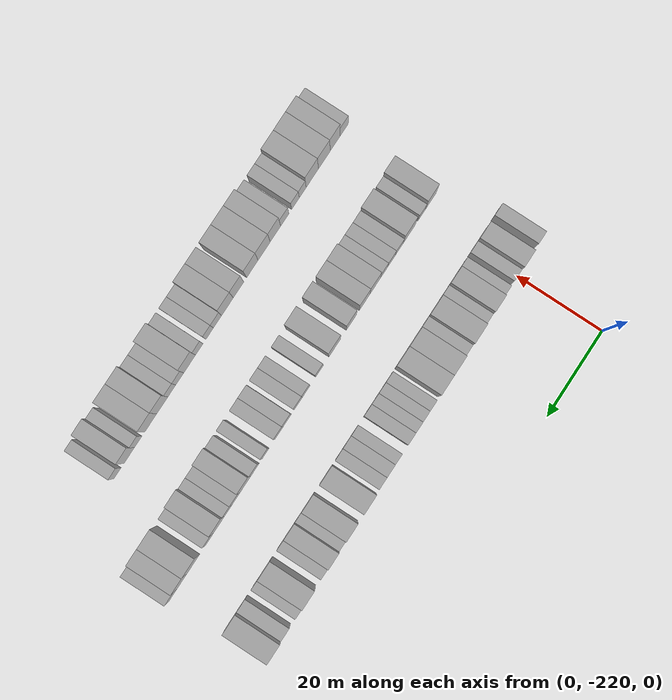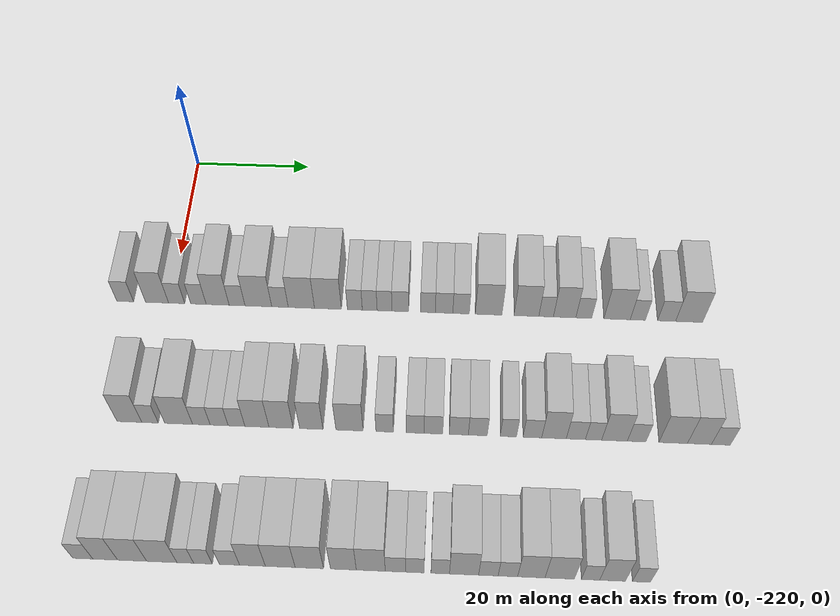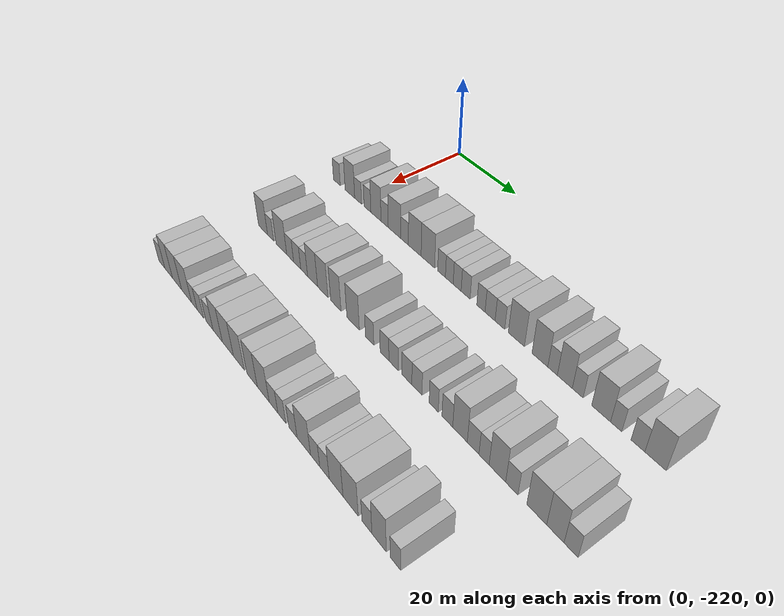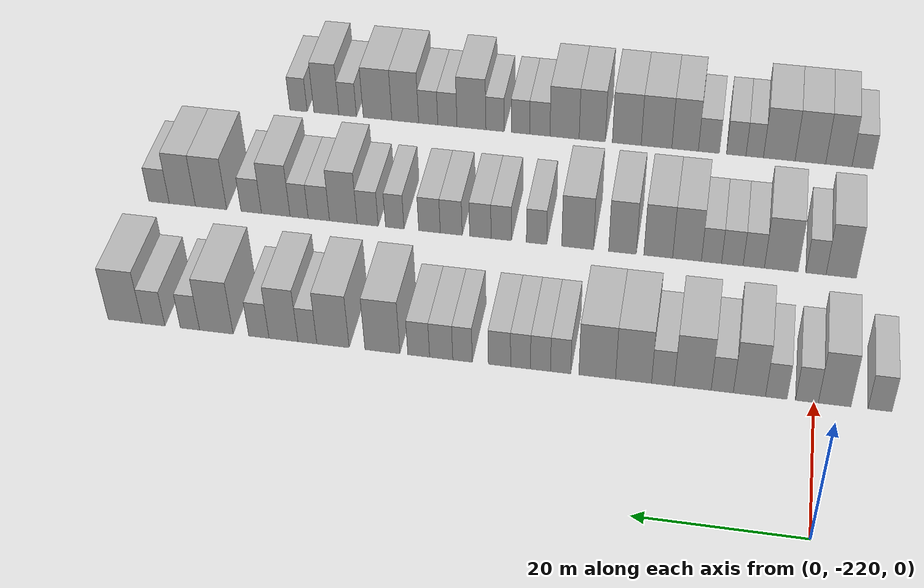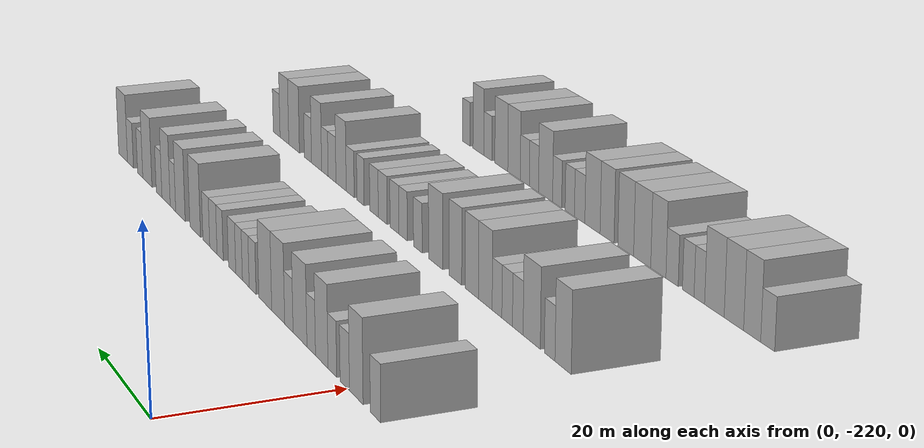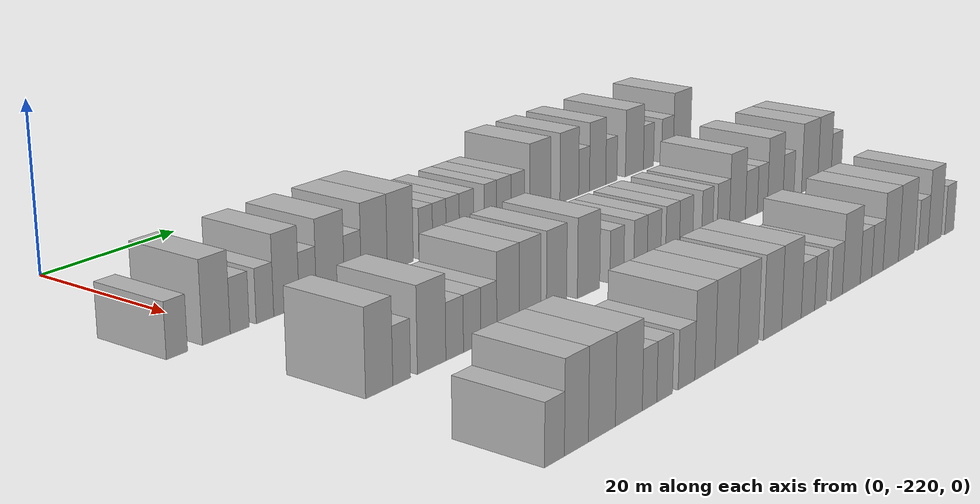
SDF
<sdf version="1.6">
 <world name="default">
  <model name="building_39">
   <static>1</static>
   <pose>25.0000 -227.7709 0 0.000000 0.000000 0.000000</pose>
   <link name="link">
    <pose>0 0 3.00 0 0 0</pose>
    <collision name="collision"><geometry><box><size>10.0000 2.8256 6.0000</size></box></geometry></collision>
    <visual name="visual">
     <cast_shadows>0</cast_shadows>
     <geometry><box><size>10.0000 2.8256 6.0000</size></box></geometry>
     <material>
      <script>
       <uri>model://HANNAS_wall/materials/scripts</uri>
       <uri>model://HANNAS_wall/materials/textures</uri>
       <name>vrc/HANNAS_wall</name>
      </script>
     </material>
    </visual>
   </link>
  </model>
  <model name="building_40">
   <static>1</static>
   <pose>25.0000 -222.4260 0 0.000000 0.000000 0.000000</pose>
   <link name="link">
    <pose>0 0 4.50 0 0 0</pose>
    <collision name="collision"><geometry><box><size>10.0000 3.8643 9.0000</size></box></geometry></collision>
    <visual name="visual">
     <cast_shadows>0</cast_shadows>
     <geometry><box><size>10.0000 3.8643 9.0000</size></box></geometry>
     <material>
      <script>
       <uri>model://HANNAS_wall/materials/scripts</uri>
       <uri>model://HANNAS_wall/materials/textures</uri>
       <name>vrc/HANNAS_wall</name>
      </script>
     </material>
    </visual>
   </link>
  </model>
  <model name="building_41">
   <static>1</static>
   <pose>25.0000 -219.1392 0 0.000000 0.000000 0.000000</pose>
   <link name="link">
    <pose>0 0 3.00 0 0 0</pose>
    <collision name="collision"><geometry><box><size>10.0000 2.7093 6.0000</size></box></geometry></collision>
    <visual name="visual">
     <cast_shadows>0</cast_shadows>
     <geometry><box><size>10.0000 2.7093 6.0000</size></box></geometry>
     <material>
      <script>
       <uri>model://HANNAS_wall/materials/scripts</uri>
       <uri>model://HANNAS_wall/materials/textures</uri>
       <name>vrc/HANNAS_wall</name>
      </script>
     </material>
    </visual>
   </link>
  </model>
  <model name="building_42">
   <static>1</static>
   <pose>25.0000 -215.4907 0 0.000000 0.000000 0.000000</pose>
   <link name="link">
    <pose>0 0 3.00 0 0 0</pose>
    <collision name="collision"><geometry><box><size>10.0000 2.5876 6.0000</size></box></geometry></collision>
    <visual name="visual">
     <cast_shadows>0</cast_shadows>
     <geometry><box><size>10.0000 2.5876 6.0000</size></box></geometry>
     <material>
      <script>
       <uri>model://HANNAS_wall/materials/scripts</uri>
       <uri>model://HANNAS_wall/materials/textures</uri>
       <name>vrc/HANNAS_wall</name>
      </script>
     </material>
    </visual>
   </link>
  </model>
  <model name="building_43">
   <static>1</static>
   <pose>25.0000 -212.2782 0 0.000000 0.000000 0.000000</pose>
   <link name="link">
    <pose>0 0 4.50 0 0 0</pose>
    <collision name="collision"><geometry><box><size>10.0000 3.8374 9.0000</size></box></geometry></collision>
    <visual name="visual">
     <cast_shadows>0</cast_shadows>
     <geometry><box><size>10.0000 3.8374 9.0000</size></box></geometry>
     <material>
      <script>
       <uri>model://HANNAS_wall/materials/scripts</uri>
       <uri>model://HANNAS_wall/materials/textures</uri>
       <name>vrc/HANNAS_wall</name>
      </script>
     </material>
    </visual>
   </link>
  </model>
  <model name="building_44">
   <static>1</static>
   <pose>25.0000 -209.0269 0 0.000000 0.000000 0.000000</pose>
   <link name="link">
    <pose>0 0 3.00 0 0 0</pose>
    <collision name="collision"><geometry><box><size>10.0000 2.6652 6.0000</size></box></geometry></collision>
    <visual name="visual">
     <cast_shadows>0</cast_shadows>
     <geometry><box><size>10.0000 2.6652 6.0000</size></box></geometry>
     <material>
      <script>
       <uri>model://HANNAS_wall/materials/scripts</uri>
       <uri>model://HANNAS_wall/materials/textures</uri>
       <name>vrc/HANNAS_wall</name>
      </script>
     </material>
    </visual>
   </link>
  </model>
  <model name="building_45">
   <static>1</static>
   <pose>25.0000 -205.4694 0 0.000000 0.000000 0.000000</pose>
   <link name="link">
    <pose>0 0 4.50 0 0 0</pose>
    <collision name="collision"><geometry><box><size>10.0000 4.4498 9.0000</size></box></geometry></collision>
    <visual name="visual">
     <cast_shadows>0</cast_shadows>
     <geometry><box><size>10.0000 4.4498 9.0000</size></box></geometry>
     <material>
      <script>
       <uri>model://HANNAS_wall/materials/scripts</uri>
       <uri>model://HANNAS_wall/materials/textures</uri>
       <name>vrc/HANNAS_wall</name>
      </script>
     </material>
    </visual>
   </link>
  </model>
  <model name="building_46">
   <static>1</static>
   <pose>25.0000 -201.8686 0 0.000000 0.000000 0.000000</pose>
   <link name="link">
    <pose>0 0 3.00 0 0 0</pose>
    <collision name="collision"><geometry><box><size>10.0000 2.7518 6.0000</size></box></geometry></collision>
    <visual name="visual">
     <cast_shadows>0</cast_shadows>
     <geometry><box><size>10.0000 2.7518 6.0000</size></box></geometry>
     <material>
      <script>
       <uri>model://HANNAS_wall/materials/scripts</uri>
       <uri>model://HANNAS_wall/materials/textures</uri>
       <name>vrc/HANNAS_wall</name>
      </script>
     </material>
    </visual>
   </link>
  </model>
  <model name="building_47">
   <static>1</static>
   <pose>25.0000 -198.3049 0 0.000000 0.000000 0.000000</pose>
   <link name="link">
    <pose>0 0 4.50 0 0 0</pose>
    <collision name="collision"><geometry><box><size>10.0000 4.3757 9.0000</size></box></geometry></collision>
    <visual name="visual">
     <cast_shadows>0</cast_shadows>
     <geometry><box><size>10.0000 4.3757 9.0000</size></box></geometry>
     <material>
      <script>
       <uri>model://HANNAS_wall/materials/scripts</uri>
       <uri>model://HANNAS_wall/materials/textures</uri>
       <name>vrc/HANNAS_wall</name>
      </script>
     </material>
    </visual>
   </link>
  </model>
  <model name="building_48">
   <static>1</static>
   <pose>25.0000 -193.8759 0 0.000000 0.000000 0.000000</pose>
   <link name="link">
    <pose>0 0 4.50 0 0 0</pose>
    <collision name="collision"><geometry><box><size>10.0000 4.4822 9.0000</size></box></geometry></collision>
    <visual name="visual">
     <cast_shadows>0</cast_shadows>
     <geometry><box><size>10.0000 4.4822 9.0000</size></box></geometry>
     <material>
      <script>
       <uri>model://HANNAS_wall/materials/scripts</uri>
       <uri>model://HANNAS_wall/materials/textures</uri>
       <name>vrc/HANNAS_wall</name>
      </script>
     </material>
    </visual>
   </link>
  </model>
  <model name="building_49">
   <static>1</static>
   <pose>25.0000 -189.3952 0 0.000000 0.000000 0.000000</pose>
   <link name="link">
    <pose>0 0 3.00 0 0 0</pose>
    <collision name="collision"><geometry><box><size>10.0000 2.4792 6.0000</size></box></geometry></collision>
    <visual name="visual">
     <cast_shadows>0</cast_shadows>
     <geometry><box><size>10.0000 2.4792 6.0000</size></box></geometry>
     <material>
      <script>
       <uri>model://HANNAS_wall/materials/scripts</uri>
       <uri>model://HANNAS_wall/materials/textures</uri>
       <name>vrc/HANNAS_wall</name>
      </script>
     </material>
    </visual>
   </link>
  </model>
  <model name="building_50">
   <static>1</static>
   <pose>25.0000 -186.9247 0 0.000000 0.000000 0.000000</pose>
   <link name="link">
    <pose>0 0 3.00 0 0 0</pose>
    <collision name="collision"><geometry><box><size>10.0000 2.4616 6.0000</size></box></geometry></collision>
    <visual name="visual">
     <cast_shadows>0</cast_shadows>
     <geometry><box><size>10.0000 2.4616 6.0000</size></box></geometry>
     <material>
      <script>
       <uri>model://HANNAS_wall/materials/scripts</uri>
       <uri>model://HANNAS_wall/materials/textures</uri>
       <name>vrc/HANNAS_wall</name>
      </script>
     </material>
    </visual>
   </link>
  </model>
  <model name="building_51">
   <static>1</static>
   <pose>25.0000 -184.4605 0 0.000000 0.000000 0.000000</pose>
   <link name="link">
    <pose>0 0 3.00 0 0 0</pose>
    <collision name="collision"><geometry><box><size>10.0000 2.4669 6.0000</size></box></geometry></collision>
    <visual name="visual">
     <cast_shadows>0</cast_shadows>
     <geometry><box><size>10.0000 2.4669 6.0000</size></box></geometry>
     <material>
      <script>
       <uri>model://HANNAS_wall/materials/scripts</uri>
       <uri>model://HANNAS_wall/materials/textures</uri>
       <name>vrc/HANNAS_wall</name>
      </script>
     </material>
    </visual>
   </link>
  </model>
  <model name="building_52">
   <static>1</static>
   <pose>25.0000 -181.8542 0 0.000000 0.000000 0.000000</pose>
   <link name="link">
    <pose>0 0 3.00 0 0 0</pose>
    <collision name="collision"><geometry><box><size>10.0000 2.7457 6.0000</size></box></geometry></collision>
    <visual name="visual">
     <cast_shadows>0</cast_shadows>
     <geometry><box><size>10.0000 2.7457 6.0000</size></box></geometry>
     <material>
      <script>
       <uri>model://HANNAS_wall/materials/scripts</uri>
       <uri>model://HANNAS_wall/materials/textures</uri>
       <name>vrc/HANNAS_wall</name>
      </script>
     </material>
    </visual>
   </link>
  </model>
  <model name="building_53">
   <static>1</static>
   <pose>25.0000 -177.2679 0 0.000000 0.000000 0.000000</pose>
   <link name="link">
    <pose>0 0 3.00 0 0 0</pose>
    <collision name="collision"><geometry><box><size>10.0000 2.4268 6.0000</size></box></geometry></collision>
    <visual name="visual">
     <cast_shadows>0</cast_shadows>
     <geometry><box><size>10.0000 2.4268 6.0000</size></box></geometry>
     <material>
      <script>
       <uri>model://HANNAS_wall/materials/scripts</uri>
       <uri>model://HANNAS_wall/materials/textures</uri>
       <name>vrc/HANNAS_wall</name>
      </script>
     </material>
    </visual>
   </link>
  </model>
  <model name="building_54">
   <static>1</static>
   <pose>25.0000 -174.6032 0 0.000000 0.000000 0.000000</pose>
   <link name="link">
    <pose>0 0 3.00 0 0 0</pose>
    <collision name="collision"><geometry><box><size>10.0000 2.9027 6.0000</size></box></geometry></collision>
    <visual name="visual">
     <cast_shadows>0</cast_shadows>
     <geometry><box><size>10.0000 2.9027 6.0000</size></box></geometry>
     <material>
      <script>
       <uri>model://HANNAS_wall/materials/scripts</uri>
       <uri>model://HANNAS_wall/materials/textures</uri>
       <name>vrc/HANNAS_wall</name>
      </script>
     </material>
    </visual>
   </link>
  </model>
  <model name="building_55">
   <static>1</static>
   <pose>25.0000 -171.7885 0 0.000000 0.000000 0.000000</pose>
   <link name="link">
    <pose>0 0 3.00 0 0 0</pose>
    <collision name="collision"><geometry><box><size>10.0000 2.7267 6.0000</size></box></geometry></collision>
    <visual name="visual">
     <cast_shadows>0</cast_shadows>
     <geometry><box><size>10.0000 2.7267 6.0000</size></box></geometry>
     <material>
      <script>
       <uri>model://HANNAS_wall/materials/scripts</uri>
       <uri>model://HANNAS_wall/materials/textures</uri>
       <name>vrc/HANNAS_wall</name>
      </script>
     </material>
    </visual>
   </link>
  </model>
  <model name="building_56">
   <static>1</static>
   <pose>25.0000 -167.2256 0 0.000000 0.000000 0.000000</pose>
   <link name="link">
    <pose>0 0 4.50 0 0 0</pose>
    <collision name="collision"><geometry><box><size>10.0000 4.3991 9.0000</size></box></geometry></collision>
    <visual name="visual">
     <cast_shadows>0</cast_shadows>
     <geometry><box><size>10.0000 4.3991 9.0000</size></box></geometry>
     <material>
      <script>
       <uri>model://HANNAS_wall/materials/scripts</uri>
       <uri>model://HANNAS_wall/materials/textures</uri>
       <name>vrc/HANNAS_wall</name>
      </script>
     </material>
    </visual>
   </link>
  </model>
  <model name="building_57">
   <static>1</static>
   <pose>25.0000 -160.9756 0 0.000000 0.000000 0.000000</pose>
   <link name="link">
    <pose>0 0 4.50 0 0 0</pose>
    <collision name="collision"><geometry><box><size>10.0000 4.1008 9.0000</size></box></geometry></collision>
    <visual name="visual">
     <cast_shadows>0</cast_shadows>
     <geometry><box><size>10.0000 4.1008 9.0000</size></box></geometry>
     <material>
      <script>
       <uri>model://HANNAS_wall/materials/scripts</uri>
       <uri>model://HANNAS_wall/materials/textures</uri>
       <name>vrc/HANNAS_wall</name>
      </script>
     </material>
    </visual>
   </link>
  </model>
  <model name="building_58">
   <static>1</static>
   <pose>25.0000 -157.7226 0 0.000000 0.000000 0.000000</pose>
   <link name="link">
    <pose>0 0 3.00 0 0 0</pose>
    <collision name="collision"><geometry><box><size>10.0000 2.4053 6.0000</size></box></geometry></collision>
    <visual name="visual">
     <cast_shadows>0</cast_shadows>
     <geometry><box><size>10.0000 2.4053 6.0000</size></box></geometry>
     <material>
      <script>
       <uri>model://HANNAS_wall/materials/scripts</uri>
       <uri>model://HANNAS_wall/materials/textures</uri>
       <name>vrc/HANNAS_wall</name>
      </script>
     </material>
    </visual>
   </link>
  </model>
  <model name="building_59">
   <static>1</static>
   <pose>25.0000 -154.6700 0 0.000000 0.000000 0.000000</pose>
   <link name="link">
    <pose>0 0 4.50 0 0 0</pose>
    <collision name="collision"><geometry><box><size>10.0000 3.6998 9.0000</size></box></geometry></collision>
    <visual name="visual">
     <cast_shadows>0</cast_shadows>
     <geometry><box><size>10.0000 3.6998 9.0000</size></box></geometry>
     <material>
      <script>
       <uri>model://HANNAS_wall/materials/scripts</uri>
       <uri>model://HANNAS_wall/materials/textures</uri>
       <name>vrc/HANNAS_wall</name>
      </script>
     </material>
    </visual>
   </link>
  </model>
  <model name="building_60">
   <static>1</static>
   <pose>25.0000 -151.5167 0 0.000000 0.000000 0.000000</pose>
   <link name="link">
    <pose>0 0 3.00 0 0 0</pose>
    <collision name="collision"><geometry><box><size>10.0000 2.6069 6.0000</size></box></geometry></collision>
    <visual name="visual">
     <cast_shadows>0</cast_shadows>
     <geometry><box><size>10.0000 2.6069 6.0000</size></box></geometry>
     <material>
      <script>
       <uri>model://HANNAS_wall/materials/scripts</uri>
       <uri>model://HANNAS_wall/materials/textures</uri>
       <name>vrc/HANNAS_wall</name>
      </script>
     </material>
    </visual>
   </link>
  </model>
  <model name="building_61">
   <static>1</static>
   <pose>25.0000 -146.0460 0 0.000000 0.000000 0.000000</pose>
   <link name="link">
    <pose>0 0 4.50 0 0 0</pose>
    <collision name="collision"><geometry><box><size>10.0000 4.3344 9.0000</size></box></geometry></collision>
    <visual name="visual">
     <cast_shadows>0</cast_shadows>
     <geometry><box><size>10.0000 4.3344 9.0000</size></box></geometry>
     <material>
      <script>
       <uri>model://HANNAS_wall/materials/scripts</uri>
       <uri>model://HANNAS_wall/materials/textures</uri>
       <name>vrc/HANNAS_wall</name>
      </script>
     </material>
    </visual>
   </link>
  </model>
  <model name="building_62">
   <static>1</static>
   <pose>25.0000 -142.6316 0 0.000000 0.000000 0.000000</pose>
   <link name="link">
    <pose>0 0 3.00 0 0 0</pose>
    <collision name="collision"><geometry><box><size>10.0000 2.4945 6.0000</size></box></geometry></collision>
    <visual name="visual">
     <cast_shadows>0</cast_shadows>
     <geometry><box><size>10.0000 2.4945 6.0000</size></box></geometry>
     <material>
      <script>
       <uri>model://HANNAS_wall/materials/scripts</uri>
       <uri>model://HANNAS_wall/materials/textures</uri>
       <name>vrc/HANNAS_wall</name>
      </script>
     </material>
    </visual>
   </link>
  </model>
  <model name="building_63">
   <static>1</static>
   <pose>25.0000 -137.9077 0 0.000000 0.000000 0.000000</pose>
   <link name="link">
    <pose>0 0 3.00 0 0 0</pose>
    <collision name="collision"><geometry><box><size>10.0000 2.9533 6.0000</size></box></geometry></collision>
    <visual name="visual">
     <cast_shadows>0</cast_shadows>
     <geometry><box><size>10.0000 2.9533 6.0000</size></box></geometry>
     <material>
      <script>
       <uri>model://HANNAS_wall/materials/scripts</uri>
       <uri>model://HANNAS_wall/materials/textures</uri>
       <name>vrc/HANNAS_wall</name>
      </script>
     </material>
    </visual>
   </link>
  </model>
  <model name="building_64">
   <static>1</static>
   <pose>25.0000 -134.2101 0 0.000000 0.000000 0.000000</pose>
   <link name="link">
    <pose>0 0 4.50 0 0 0</pose>
    <collision name="collision"><geometry><box><size>10.0000 4.4419 9.0000</size></box></geometry></collision>
    <visual name="visual">
     <cast_shadows>0</cast_shadows>
     <geometry><box><size>10.0000 4.4419 9.0000</size></box></geometry>
     <material>
      <script>
       <uri>model://HANNAS_wall/materials/scripts</uri>
       <uri>model://HANNAS_wall/materials/textures</uri>
       <name>vrc/HANNAS_wall</name>
      </script>
     </material>
    </visual>
   </link>
  </model>
  <model name="building_226">
   <static>1</static>
   <pose>47.0000 -222.9949 0 0.000000 0.000000 0.000000</pose>
   <link name="link">
    <pose>0 0 4.50 0 0 0</pose>
    <collision name="collision"><geometry><box><size>10.0000 3.8759 9.0000</size></box></geometry></collision>
    <visual name="visual">
     <cast_shadows>0</cast_shadows>
     <geometry><box><size>10.0000 3.8759 9.0000</size></box></geometry>
     <material>
      <script>
       <uri>model://HANNAS_wall/materials/scripts</uri>
       <uri>model://HANNAS_wall/materials/textures</uri>
       <name>vrc/HANNAS_wall</name>
      </script>
     </material>
    </visual>
   </link>
  </model>
  <model name="building_227">
   <static>1</static>
   <pose>47.0000 -219.7578 0 0.000000 0.000000 0.000000</pose>
   <link name="link">
    <pose>0 0 3.00 0 0 0</pose>
    <collision name="collision"><geometry><box><size>10.0000 2.5982 6.0000</size></box></geometry></collision>
    <visual name="visual">
     <cast_shadows>0</cast_shadows>
     <geometry><box><size>10.0000 2.5982 6.0000</size></box></geometry>
     <material>
      <script>
       <uri>model://HANNAS_wall/materials/scripts</uri>
       <uri>model://HANNAS_wall/materials/textures</uri>
       <name>vrc/HANNAS_wall</name>
      </script>
     </material>
    </visual>
   </link>
  </model>
  <model name="building_228">
   <static>1</static>
   <pose>47.0000 -215.2842 0 0.000000 0.000000 0.000000</pose>
   <link name="link">
    <pose>0 0 4.50 0 0 0</pose>
    <collision name="collision"><geometry><box><size>10.0000 4.3491 9.0000</size></box></geometry></collision>
    <visual name="visual">
     <cast_shadows>0</cast_shadows>
     <geometry><box><size>10.0000 4.3491 9.0000</size></box></geometry>
     <material>
      <script>
       <uri>model://HANNAS_wall/materials/scripts</uri>
       <uri>model://HANNAS_wall/materials/textures</uri>
       <name>vrc/HANNAS_wall</name>
      </script>
     </material>
    </visual>
   </link>
  </model>
  <model name="building_229">
   <static>1</static>
   <pose>47.0000 -211.7308 0 0.000000 0.000000 0.000000</pose>
   <link name="link">
    <pose>0 0 3.00 0 0 0</pose>
    <collision name="collision"><geometry><box><size>10.0000 2.7577 6.0000</size></box></geometry></collision>
    <visual name="visual">
     <cast_shadows>0</cast_shadows>
     <geometry><box><size>10.0000 2.7577 6.0000</size></box></geometry>
     <material>
      <script>
       <uri>model://HANNAS_wall/materials/scripts</uri>
       <uri>model://HANNAS_wall/materials/textures</uri>
       <name>vrc/HANNAS_wall</name>
      </script>
     </material>
    </visual>
   </link>
  </model>
  <model name="building_230">
   <static>1</static>
   <pose>47.0000 -208.9509 0 0.000000 0.000000 0.000000</pose>
   <link name="link">
    <pose>0 0 3.00 0 0 0</pose>
    <collision name="collision"><geometry><box><size>10.0000 2.8020 6.0000</size></box></geometry></collision>
    <visual name="visual">
     <cast_shadows>0</cast_shadows>
     <geometry><box><size>10.0000 2.8020 6.0000</size></box></geometry>
     <material>
      <script>
       <uri>model://HANNAS_wall/materials/scripts</uri>
       <uri>model://HANNAS_wall/materials/textures</uri>
       <name>vrc/HANNAS_wall</name>
      </script>
     </material>
    </visual>
   </link>
  </model>
  <model name="building_231">
   <static>1</static>
   <pose>47.0000 -206.2423 0 0.000000 0.000000 0.000000</pose>
   <link name="link">
    <pose>0 0 3.00 0 0 0</pose>
    <collision name="collision"><geometry><box><size>10.0000 2.6152 6.0000</size></box></geometry></collision>
    <visual name="visual">
     <cast_shadows>0</cast_shadows>
     <geometry><box><size>10.0000 2.6152 6.0000</size></box></geometry>
     <material>
      <script>
       <uri>model://HANNAS_wall/materials/scripts</uri>
       <uri>model://HANNAS_wall/materials/textures</uri>
       <name>vrc/HANNAS_wall</name>
      </script>
     </material>
    </visual>
   </link>
  </model>
  <model name="building_232">
   <static>1</static>
   <pose>47.0000 -203.0564 0 0.000000 0.000000 0.000000</pose>
   <link name="link">
    <pose>0 0 4.50 0 0 0</pose>
    <collision name="collision"><geometry><box><size>10.0000 3.7567 9.0000</size></box></geometry></collision>
    <visual name="visual">
     <cast_shadows>0</cast_shadows>
     <geometry><box><size>10.0000 3.7567 9.0000</size></box></geometry>
     <material>
      <script>
       <uri>model://HANNAS_wall/materials/scripts</uri>
       <uri>model://HANNAS_wall/materials/textures</uri>
       <name>vrc/HANNAS_wall</name>
      </script>
     </material>
    </visual>
   </link>
  </model>
  <model name="building_233">
   <static>1</static>
   <pose>47.0000 -199.2914 0 0.000000 0.000000 0.000000</pose>
   <link name="link">
    <pose>0 0 4.50 0 0 0</pose>
    <collision name="collision"><geometry><box><size>10.0000 3.7733 9.0000</size></box></geometry></collision>
    <visual name="visual">
     <cast_shadows>0</cast_shadows>
     <geometry><box><size>10.0000 3.7733 9.0000</size></box></geometry>
     <material>
      <script>
       <uri>model://HANNAS_wall/materials/scripts</uri>
       <uri>model://HANNAS_wall/materials/textures</uri>
       <name>vrc/HANNAS_wall</name>
      </script>
     </material>
    </visual>
   </link>
  </model>
  <model name="building_234">
   <static>1</static>
   <pose>47.0000 -194.5879 0 0.000000 0.000000 0.000000</pose>
   <link name="link">
    <pose>0 0 4.50 0 0 0</pose>
    <collision name="collision"><geometry><box><size>10.0000 3.6338 9.0000</size></box></geometry></collision>
    <visual name="visual">
     <cast_shadows>0</cast_shadows>
     <geometry><box><size>10.0000 3.6338 9.0000</size></box></geometry>
     <material>
      <script>
       <uri>model://HANNAS_wall/materials/scripts</uri>
       <uri>model://HANNAS_wall/materials/textures</uri>
       <name>vrc/HANNAS_wall</name>
      </script>
     </material>
    </visual>
   </link>
  </model>
  <model name="building_235">
   <static>1</static>
   <pose>47.0000 -188.6624 0 0.000000 0.000000 0.000000</pose>
   <link name="link">
    <pose>0 0 4.50 0 0 0</pose>
    <collision name="collision"><geometry><box><size>10.0000 4.2171 9.0000</size></box></geometry></collision>
    <visual name="visual">
     <cast_shadows>0</cast_shadows>
     <geometry><box><size>10.0000 4.2171 9.0000</size></box></geometry>
     <material>
      <script>
       <uri>model://HANNAS_wall/materials/scripts</uri>
       <uri>model://HANNAS_wall/materials/textures</uri>
       <name>vrc/HANNAS_wall</name>
      </script>
     </material>
    </visual>
   </link>
  </model>
  <model name="building_236">
   <static>1</static>
   <pose>47.0000 -183.1986 0 0.000000 0.000000 0.000000</pose>
   <link name="link">
    <pose>0 0 3.00 0 0 0</pose>
    <collision name="collision"><geometry><box><size>10.0000 2.7106 6.0000</size></box></geometry></collision>
    <visual name="visual">
     <cast_shadows>0</cast_shadows>
     <geometry><box><size>10.0000 2.7106 6.0000</size></box></geometry>
     <material>
      <script>
       <uri>model://HANNAS_wall/materials/scripts</uri>
       <uri>model://HANNAS_wall/materials/textures</uri>
       <name>vrc/HANNAS_wall</name>
      </script>
     </material>
    </visual>
   </link>
  </model>
  <model name="building_237">
   <static>1</static>
   <pose>47.0000 -178.4781 0 0.000000 0.000000 0.000000</pose>
   <link name="link">
    <pose>0 0 3.00 0 0 0</pose>
    <collision name="collision"><geometry><box><size>10.0000 2.7304 6.0000</size></box></geometry></collision>
    <visual name="visual">
     <cast_shadows>0</cast_shadows>
     <geometry><box><size>10.0000 2.7304 6.0000</size></box></geometry>
     <material>
      <script>
       <uri>model://HANNAS_wall/materials/scripts</uri>
       <uri>model://HANNAS_wall/materials/textures</uri>
       <name>vrc/HANNAS_wall</name>
      </script>
     </material>
    </visual>
   </link>
  </model>
  <model name="building_238">
   <static>1</static>
   <pose>47.0000 -175.6693 0 0.000000 0.000000 0.000000</pose>
   <link name="link">
    <pose>0 0 3.00 0 0 0</pose>
    <collision name="collision"><geometry><box><size>10.0000 2.8872 6.0000</size></box></geometry></collision>
    <visual name="visual">
     <cast_shadows>0</cast_shadows>
     <geometry><box><size>10.0000 2.8872 6.0000</size></box></geometry>
     <material>
      <script>
       <uri>model://HANNAS_wall/materials/scripts</uri>
       <uri>model://HANNAS_wall/materials/textures</uri>
       <name>vrc/HANNAS_wall</name>
      </script>
     </material>
    </visual>
   </link>
  </model>
  <model name="building_239">
   <static>1</static>
   <pose>47.0000 -171.7450 0 0.000000 0.000000 0.000000</pose>
   <link name="link">
    <pose>0 0 3.00 0 0 0</pose>
    <collision name="collision"><geometry><box><size>10.0000 2.9614 6.0000</size></box></geometry></collision>
    <visual name="visual">
     <cast_shadows>0</cast_shadows>
     <geometry><box><size>10.0000 2.9614 6.0000</size></box></geometry>
     <material>
      <script>
       <uri>model://HANNAS_wall/materials/scripts</uri>
       <uri>model://HANNAS_wall/materials/textures</uri>
       <name>vrc/HANNAS_wall</name>
      </script>
     </material>
    </visual>
   </link>
  </model>
  <model name="building_240">
   <static>1</static>
   <pose>47.0000 -168.8043 0 0.000000 0.000000 0.000000</pose>
   <link name="link">
    <pose>0 0 3.00 0 0 0</pose>
    <collision name="collision"><geometry><box><size>10.0000 2.9201 6.0000</size></box></geometry></collision>
    <visual name="visual">
     <cast_shadows>0</cast_shadows>
     <geometry><box><size>10.0000 2.9201 6.0000</size></box></geometry>
     <material>
      <script>
       <uri>model://HANNAS_wall/materials/scripts</uri>
       <uri>model://HANNAS_wall/materials/textures</uri>
       <name>vrc/HANNAS_wall</name>
      </script>
     </material>
    </visual>
   </link>
  </model>
  <model name="building_241">
   <static>1</static>
   <pose>47.0000 -164.0851 0 0.000000 0.000000 0.000000</pose>
   <link name="link">
    <pose>0 0 3.00 0 0 0</pose>
    <collision name="collision"><geometry><box><size>10.0000 2.5182 6.0000</size></box></geometry></collision>
    <visual name="visual">
     <cast_shadows>0</cast_shadows>
     <geometry><box><size>10.0000 2.5182 6.0000</size></box></geometry>
     <material>
      <script>
       <uri>model://HANNAS_wall/materials/scripts</uri>
       <uri>model://HANNAS_wall/materials/textures</uri>
       <name>vrc/HANNAS_wall</name>
      </script>
     </material>
    </visual>
   </link>
  </model>
  <model name="building_242">
   <static>1</static>
   <pose>47.0000 -160.3855 0 0.000000 0.000000 0.000000</pose>
   <link name="link">
    <pose>0 0 3.00 0 0 0</pose>
    <collision name="collision"><geometry><box><size>10.0000 2.8812 6.0000</size></box></geometry></collision>
    <visual name="visual">
     <cast_shadows>0</cast_shadows>
     <geometry><box><size>10.0000 2.8812 6.0000</size></box></geometry>
     <material>
      <script>
       <uri>model://HANNAS_wall/materials/scripts</uri>
       <uri>model://HANNAS_wall/materials/textures</uri>
       <name>vrc/HANNAS_wall</name>
      </script>
     </material>
    </visual>
   </link>
  </model>
  <model name="building_243">
   <static>1</static>
   <pose>47.0000 -157.0518 0 0.000000 0.000000 0.000000</pose>
   <link name="link">
    <pose>0 0 4.50 0 0 0</pose>
    <collision name="collision"><geometry><box><size>10.0000 3.7862 9.0000</size></box></geometry></collision>
    <visual name="visual">
     <cast_shadows>0</cast_shadows>
     <geometry><box><size>10.0000 3.7862 9.0000</size></box></geometry>
     <material>
      <script>
       <uri>model://HANNAS_wall/materials/scripts</uri>
       <uri>model://HANNAS_wall/materials/textures</uri>
       <name>vrc/HANNAS_wall</name>
      </script>
     </material>
    </visual>
   </link>
  </model>
  <model name="building_244">
   <static>1</static>
   <pose>47.0000 -153.6882 0 0.000000 0.000000 0.000000</pose>
   <link name="link">
    <pose>0 0 3.00 0 0 0</pose>
    <collision name="collision"><geometry><box><size>10.0000 2.9409 6.0000</size></box></geometry></collision>
    <visual name="visual">
     <cast_shadows>0</cast_shadows>
     <geometry><box><size>10.0000 2.9409 6.0000</size></box></geometry>
     <material>
      <script>
       <uri>model://HANNAS_wall/materials/scripts</uri>
       <uri>model://HANNAS_wall/materials/textures</uri>
       <name>vrc/HANNAS_wall</name>
      </script>
     </material>
    </visual>
   </link>
  </model>
  <model name="building_245">
   <static>1</static>
   <pose>47.0000 -150.9694 0 0.000000 0.000000 0.000000</pose>
   <link name="link">
    <pose>0 0 3.00 0 0 0</pose>
    <collision name="collision"><geometry><box><size>10.0000 2.4968 6.0000</size></box></geometry></collision>
    <visual name="visual">
     <cast_shadows>0</cast_shadows>
     <geometry><box><size>10.0000 2.4968 6.0000</size></box></geometry>
     <material>
      <script>
       <uri>model://HANNAS_wall/materials/scripts</uri>
       <uri>model://HANNAS_wall/materials/textures</uri>
       <name>vrc/HANNAS_wall</name>
      </script>
     </material>
    </visual>
   </link>
  </model>
  <model name="building_246">
   <static>1</static>
   <pose>47.0000 -147.7438 0 0.000000 0.000000 0.000000</pose>
   <link name="link">
    <pose>0 0 4.50 0 0 0</pose>
    <collision name="collision"><geometry><box><size>10.0000 3.9543 9.0000</size></box></geometry></collision>
    <visual name="visual">
     <cast_shadows>0</cast_shadows>
     <geometry><box><size>10.0000 3.9543 9.0000</size></box></geometry>
     <material>
      <script>
       <uri>model://HANNAS_wall/materials/scripts</uri>
       <uri>model://HANNAS_wall/materials/textures</uri>
       <name>vrc/HANNAS_wall</name>
      </script>
     </material>
    </visual>
   </link>
  </model>
  <model name="building_247">
   <static>1</static>
   <pose>47.0000 -144.3407 0 0.000000 0.000000 0.000000</pose>
   <link name="link">
    <pose>0 0 3.00 0 0 0</pose>
    <collision name="collision"><geometry><box><size>10.0000 2.8518 6.0000</size></box></geometry></collision>
    <visual name="visual">
     <cast_shadows>0</cast_shadows>
     <geometry><box><size>10.0000 2.8518 6.0000</size></box></geometry>
     <material>
      <script>
       <uri>model://HANNAS_wall/materials/scripts</uri>
       <uri>model://HANNAS_wall/materials/textures</uri>
       <name>vrc/HANNAS_wall</name>
      </script>
     </material>
    </visual>
   </link>
  </model>
  <model name="building_248">
   <static>1</static>
   <pose>47.0000 -138.7306 0 0.000000 0.000000 0.000000</pose>
   <link name="link">
    <pose>0 0 4.50 0 0 0</pose>
    <collision name="collision"><geometry><box><size>10.0000 4.3685 9.0000</size></box></geometry></collision>
    <visual name="visual">
     <cast_shadows>0</cast_shadows>
     <geometry><box><size>10.0000 4.3685 9.0000</size></box></geometry>
     <material>
      <script>
       <uri>model://HANNAS_wall/materials/scripts</uri>
       <uri>model://HANNAS_wall/materials/textures</uri>
       <name>vrc/HANNAS_wall</name>
      </script>
     </material>
    </visual>
   </link>
  </model>
  <model name="building_249">
   <static>1</static>
   <pose>47.0000 -134.7079 0 0.000000 0.000000 0.000000</pose>
   <link name="link">
    <pose>0 0 4.50 0 0 0</pose>
    <collision name="collision"><geometry><box><size>10.0000 3.6768 9.0000</size></box></geometry></collision>
    <visual name="visual">
     <cast_shadows>0</cast_shadows>
     <geometry><box><size>10.0000 3.6768 9.0000</size></box></geometry>
     <material>
      <script>
       <uri>model://HANNAS_wall/materials/scripts</uri>
       <uri>model://HANNAS_wall/materials/textures</uri>
       <name>vrc/HANNAS_wall</name>
      </script>
     </material>
    </visual>
   </link>
  </model>
  <model name="building_250">
   <static>1</static>
   <pose>47.0000 -131.4316 0 0.000000 0.000000 0.000000</pose>
   <link name="link">
    <pose>0 0 3.00 0 0 0</pose>
    <collision name="collision"><geometry><box><size>10.0000 2.8758 6.0000</size></box></geometry></collision>
    <visual name="visual">
     <cast_shadows>0</cast_shadows>
     <geometry><box><size>10.0000 2.8758 6.0000</size></box></geometry>
     <material>
      <script>
       <uri>model://HANNAS_wall/materials/scripts</uri>
       <uri>model://HANNAS_wall/materials/textures</uri>
       <name>vrc/HANNAS_wall</name>
      </script>
     </material>
    </visual>
   </link>
  </model>
  <model name="building_406">
   <static>1</static>
   <pose>69.0000 -225.7170 0 0.000000 0.000000 0.000000</pose>
   <link name="link">
    <pose>0 0 3.00 0 0 0</pose>
    <collision name="collision"><geometry><box><size>10.0000 2.9145 6.0000</size></box></geometry></collision>
    <visual name="visual">
     <cast_shadows>0</cast_shadows>
     <geometry><box><size>10.0000 2.9145 6.0000</size></box></geometry>
     <material>
      <script>
       <uri>model://HANNAS_wall/materials/scripts</uri>
       <uri>model://HANNAS_wall/materials/textures</uri>
       <name>vrc/HANNAS_wall</name>
      </script>
     </material>
    </visual>
   </link>
  </model>
  <model name="building_407">
   <static>1</static>
   <pose>69.0000 -222.4502 0 0.000000 0.000000 0.000000</pose>
   <link name="link">
    <pose>0 0 4.50 0 0 0</pose>
    <collision name="collision"><geometry><box><size>10.0000 3.6191 9.0000</size></box></geometry></collision>
    <visual name="visual">
     <cast_shadows>0</cast_shadows>
     <geometry><box><size>10.0000 3.6191 9.0000</size></box></geometry>
     <material>
      <script>
       <uri>model://HANNAS_wall/materials/scripts</uri>
       <uri>model://HANNAS_wall/materials/textures</uri>
       <name>vrc/HANNAS_wall</name>
      </script>
     </material>
    </visual>
   </link>
  </model>
  <model name="building_408">
   <static>1</static>
   <pose>69.0000 -218.5258 0 0.000000 0.000000 0.000000</pose>
   <link name="link">
    <pose>0 0 4.50 0 0 0</pose>
    <collision name="collision"><geometry><box><size>10.0000 4.2298 9.0000</size></box></geometry></collision>
    <visual name="visual">
     <cast_shadows>0</cast_shadows>
     <geometry><box><size>10.0000 4.2298 9.0000</size></box></geometry>
     <material>
      <script>
       <uri>model://HANNAS_wall/materials/scripts</uri>
       <uri>model://HANNAS_wall/materials/textures</uri>
       <name>vrc/HANNAS_wall</name>
      </script>
     </material>
    </visual>
   </link>
  </model>
  <model name="building_409">
   <static>1</static>
   <pose>69.0000 -214.2156 0 0.000000 0.000000 0.000000</pose>
   <link name="link">
    <pose>0 0 4.50 0 0 0</pose>
    <collision name="collision"><geometry><box><size>10.0000 4.3905 9.0000</size></box></geometry></collision>
    <visual name="visual">
     <cast_shadows>0</cast_shadows>
     <geometry><box><size>10.0000 4.3905 9.0000</size></box></geometry>
     <material>
      <script>
       <uri>model://HANNAS_wall/materials/scripts</uri>
       <uri>model://HANNAS_wall/materials/textures</uri>
       <name>vrc/HANNAS_wall</name>
      </script>
     </material>
    </visual>
   </link>
  </model>
  <model name="building_410">
   <static>1</static>
   <pose>69.0000 -210.8031 0 0.000000 0.000000 0.000000</pose>
   <link name="link">
    <pose>0 0 3.00 0 0 0</pose>
    <collision name="collision"><geometry><box><size>10.0000 2.4345 6.0000</size></box></geometry></collision>
    <visual name="visual">
     <cast_shadows>0</cast_shadows>
     <geometry><box><size>10.0000 2.4345 6.0000</size></box></geometry>
     <material>
      <script>
       <uri>model://HANNAS_wall/materials/scripts</uri>
       <uri>model://HANNAS_wall/materials/textures</uri>
       <name>vrc/HANNAS_wall</name>
      </script>
     </material>
    </visual>
   </link>
  </model>
  <model name="building_411">
   <static>1</static>
   <pose>69.0000 -208.2277 0 0.000000 0.000000 0.000000</pose>
   <link name="link">
    <pose>0 0 3.00 0 0 0</pose>
    <collision name="collision"><geometry><box><size>10.0000 2.7162 6.0000</size></box></geometry></collision>
    <visual name="visual">
     <cast_shadows>0</cast_shadows>
     <geometry><box><size>10.0000 2.7162 6.0000</size></box></geometry>
     <material>
      <script>
       <uri>model://HANNAS_wall/materials/scripts</uri>
       <uri>model://HANNAS_wall/materials/textures</uri>
       <name>vrc/HANNAS_wall</name>
      </script>
     </material>
    </visual>
   </link>
  </model>
  <model name="building_412">
   <static>1</static>
   <pose>69.0000 -204.3947 0 0.000000 0.000000 0.000000</pose>
   <link name="link">
    <pose>0 0 3.00 0 0 0</pose>
    <collision name="collision"><geometry><box><size>10.0000 2.9498 6.0000</size></box></geometry></collision>
    <visual name="visual">
     <cast_shadows>0</cast_shadows>
     <geometry><box><size>10.0000 2.9498 6.0000</size></box></geometry>
     <material>
      <script>
       <uri>model://HANNAS_wall/materials/scripts</uri>
       <uri>model://HANNAS_wall/materials/textures</uri>
       <name>vrc/HANNAS_wall</name>
      </script>
     </material>
    </visual>
   </link>
  </model>
  <model name="building_413">
   <static>1</static>
   <pose>69.0000 -201.0550 0 0.000000 0.000000 0.000000</pose>
   <link name="link">
    <pose>0 0 4.50 0 0 0</pose>
    <collision name="collision"><geometry><box><size>10.0000 3.7297 9.0000</size></box></geometry></collision>
    <visual name="visual">
     <cast_shadows>0</cast_shadows>
     <geometry><box><size>10.0000 3.7297 9.0000</size></box></geometry>
     <material>
      <script>
       <uri>model://HANNAS_wall/materials/scripts</uri>
       <uri>model://HANNAS_wall/materials/textures</uri>
       <name>vrc/HANNAS_wall</name>
      </script>
     </material>
    </visual>
   </link>
  </model>
  <model name="building_414">
   <static>1</static>
   <pose>69.0000 -197.0300 0 0.000000 0.000000 0.000000</pose>
   <link name="link">
    <pose>0 0 4.50 0 0 0</pose>
    <collision name="collision"><geometry><box><size>10.0000 4.3203 9.0000</size></box></geometry></collision>
    <visual name="visual">
     <cast_shadows>0</cast_shadows>
     <geometry><box><size>10.0000 4.3203 9.0000</size></box></geometry>
     <material>
      <script>
       <uri>model://HANNAS_wall/materials/scripts</uri>
       <uri>model://HANNAS_wall/materials/textures</uri>
       <name>vrc/HANNAS_wall</name>
      </script>
     </material>
    </visual>
   </link>
  </model>
  <model name="building_415">
   <static>1</static>
   <pose>69.0000 -192.8234 0 0.000000 0.000000 0.000000</pose>
   <link name="link">
    <pose>0 0 4.50 0 0 0</pose>
    <collision name="collision"><geometry><box><size>10.0000 4.0927 9.0000</size></box></geometry></collision>
    <visual name="visual">
     <cast_shadows>0</cast_shadows>
     <geometry><box><size>10.0000 4.0927 9.0000</size></box></geometry>
     <material>
      <script>
       <uri>model://HANNAS_wall/materials/scripts</uri>
       <uri>model://HANNAS_wall/materials/textures</uri>
       <name>vrc/HANNAS_wall</name>
      </script>
     </material>
    </visual>
   </link>
  </model>
  <model name="building_416">
   <static>1</static>
   <pose>69.0000 -187.9122 0 0.000000 0.000000 0.000000</pose>
   <link name="link">
    <pose>0 0 4.50 0 0 0</pose>
    <collision name="collision"><geometry><box><size>10.0000 3.7297 9.0000</size></box></geometry></collision>
    <visual name="visual">
     <cast_shadows>0</cast_shadows>
     <geometry><box><size>10.0000 3.7297 9.0000</size></box></geometry>
     <material>
      <script>
       <uri>model://HANNAS_wall/materials/scripts</uri>
       <uri>model://HANNAS_wall/materials/textures</uri>
       <name>vrc/HANNAS_wall</name>
      </script>
     </material>
    </visual>
   </link>
  </model>
  <model name="building_417">
   <static>1</static>
   <pose>69.0000 -183.9623 0 0.000000 0.000000 0.000000</pose>
   <link name="link">
    <pose>0 0 4.50 0 0 0</pose>
    <collision name="collision"><geometry><box><size>10.0000 4.1703 9.0000</size></box></geometry></collision>
    <visual name="visual">
     <cast_shadows>0</cast_shadows>
     <geometry><box><size>10.0000 4.1703 9.0000</size></box></geometry>
     <material>
      <script>
       <uri>model://HANNAS_wall/materials/scripts</uri>
       <uri>model://HANNAS_wall/materials/textures</uri>
       <name>vrc/HANNAS_wall</name>
      </script>
     </material>
    </visual>
   </link>
  </model>
  <model name="building_418">
   <static>1</static>
   <pose>69.0000 -180.4130 0 0.000000 0.000000 0.000000</pose>
   <link name="link">
    <pose>0 0 3.00 0 0 0</pose>
    <collision name="collision"><geometry><box><size>10.0000 2.9283 6.0000</size></box></geometry></collision>
    <visual name="visual">
     <cast_shadows>0</cast_shadows>
     <geometry><box><size>10.0000 2.9283 6.0000</size></box></geometry>
     <material>
      <script>
       <uri>model://HANNAS_wall/materials/scripts</uri>
       <uri>model://HANNAS_wall/materials/textures</uri>
       <name>vrc/HANNAS_wall</name>
      </script>
     </material>
    </visual>
   </link>
  </model>
  <model name="building_419">
   <static>1</static>
   <pose>69.0000 -177.6272 0 0.000000 0.000000 0.000000</pose>
   <link name="link">
    <pose>0 0 3.00 0 0 0</pose>
    <collision name="collision"><geometry><box><size>10.0000 2.6434 6.0000</size></box></geometry></collision>
    <visual name="visual">
     <cast_shadows>0</cast_shadows>
     <geometry><box><size>10.0000 2.6434 6.0000</size></box></geometry>
     <material>
      <script>
       <uri>model://HANNAS_wall/materials/scripts</uri>
       <uri>model://HANNAS_wall/materials/textures</uri>
       <name>vrc/HANNAS_wall</name>
      </script>
     </material>
    </visual>
   </link>
  </model>
  <model name="building_420">
   <static>1</static>
   <pose>69.0000 -173.9824 0 0.000000 0.000000 0.000000</pose>
   <link name="link">
    <pose>0 0 3.00 0 0 0</pose>
    <collision name="collision"><geometry><box><size>10.0000 2.6461 6.0000</size></box></geometry></collision>
    <visual name="visual">
     <cast_shadows>0</cast_shadows>
     <geometry><box><size>10.0000 2.6461 6.0000</size></box></geometry>
     <material>
      <script>
       <uri>model://HANNAS_wall/materials/scripts</uri>
       <uri>model://HANNAS_wall/materials/textures</uri>
       <name>vrc/HANNAS_wall</name>
      </script>
     </material>
    </visual>
   </link>
  </model>
  <model name="building_421">
   <static>1</static>
   <pose>69.0000 -170.5652 0 0.000000 0.000000 0.000000</pose>
   <link name="link">
    <pose>0 0 4.50 0 0 0</pose>
    <collision name="collision"><geometry><box><size>10.0000 4.1883 9.0000</size></box></geometry></collision>
    <visual name="visual">
     <cast_shadows>0</cast_shadows>
     <geometry><box><size>10.0000 4.1883 9.0000</size></box></geometry>
     <material>
      <script>
       <uri>model://HANNAS_wall/materials/scripts</uri>
       <uri>model://HANNAS_wall/materials/textures</uri>
       <name>vrc/HANNAS_wall</name>
      </script>
     </material>
    </visual>
   </link>
  </model>
  <model name="building_422">
   <static>1</static>
   <pose>69.0000 -167.0713 0 0.000000 0.000000 0.000000</pose>
   <link name="link">
    <pose>0 0 3.00 0 0 0</pose>
    <collision name="collision"><geometry><box><size>10.0000 2.7996 6.0000</size></box></geometry></collision>
    <visual name="visual">
     <cast_shadows>0</cast_shadows>
     <geometry><box><size>10.0000 2.7996 6.0000</size></box></geometry>
     <material>
      <script>
       <uri>model://HANNAS_wall/materials/scripts</uri>
       <uri>model://HANNAS_wall/materials/textures</uri>
       <name>vrc/HANNAS_wall</name>
      </script>
     </material>
    </visual>
   </link>
  </model>
  <model name="building_423">
   <static>1</static>
   <pose>69.0000 -164.2747 0 0.000000 0.000000 0.000000</pose>
   <link name="link">
    <pose>0 0 3.00 0 0 0</pose>
    <collision name="collision"><geometry><box><size>10.0000 2.7936 6.0000</size></box></geometry></collision>
    <visual name="visual">
     <cast_shadows>0</cast_shadows>
     <geometry><box><size>10.0000 2.7936 6.0000</size></box></geometry>
     <material>
      <script>
       <uri>model://HANNAS_wall/materials/scripts</uri>
       <uri>model://HANNAS_wall/materials/textures</uri>
       <name>vrc/HANNAS_wall</name>
      </script>
     </material>
    </visual>
   </link>
  </model>
  <model name="building_424">
   <static>1</static>
   <pose>69.0000 -160.9158 0 0.000000 0.000000 0.000000</pose>
   <link name="link">
    <pose>0 0 4.50 0 0 0</pose>
    <collision name="collision"><geometry><box><size>10.0000 3.9242 9.0000</size></box></geometry></collision>
    <visual name="visual">
     <cast_shadows>0</cast_shadows>
     <geometry><box><size>10.0000 3.9242 9.0000</size></box></geometry>
     <material>
      <script>
       <uri>model://HANNAS_wall/materials/scripts</uri>
       <uri>model://HANNAS_wall/materials/textures</uri>
       <name>vrc/HANNAS_wall</name>
      </script>
     </material>
    </visual>
   </link>
  </model>
  <model name="building_425">
   <static>1</static>
   <pose>69.0000 -156.8555 0 0.000000 0.000000 0.000000</pose>
   <link name="link">
    <pose>0 0 4.50 0 0 0</pose>
    <collision name="collision"><geometry><box><size>10.0000 4.1964 9.0000</size></box></geometry></collision>
    <visual name="visual">
     <cast_shadows>0</cast_shadows>
     <geometry><box><size>10.0000 4.1964 9.0000</size></box></geometry>
     <material>
      <script>
       <uri>model://HANNAS_wall/materials/scripts</uri>
       <uri>model://HANNAS_wall/materials/textures</uri>
       <name>vrc/HANNAS_wall</name>
      </script>
     </material>
    </visual>
   </link>
  </model>
  <model name="building_426">
   <static>1</static>
   <pose>69.0000 -152.4516 0 0.000000 0.000000 0.000000</pose>
   <link name="link">
    <pose>0 0 3.00 0 0 0</pose>
    <collision name="collision"><geometry><box><size>10.0000 2.6113 6.0000</size></box></geometry></collision>
    <visual name="visual">
     <cast_shadows>0</cast_shadows>
     <geometry><box><size>10.0000 2.6113 6.0000</size></box></geometry>
     <material>
      <script>
       <uri>model://HANNAS_wall/materials/scripts</uri>
       <uri>model://HANNAS_wall/materials/textures</uri>
       <name>vrc/HANNAS_wall</name>
      </script>
     </material>
    </visual>
   </link>
  </model>
  <model name="building_427">
   <static>1</static>
   <pose>69.0000 -149.3080 0 0.000000 0.000000 0.000000</pose>
   <link name="link">
    <pose>0 0 4.50 0 0 0</pose>
    <collision name="collision"><geometry><box><size>10.0000 3.6760 9.0000</size></box></geometry></collision>
    <visual name="visual">
     <cast_shadows>0</cast_shadows>
     <geometry><box><size>10.0000 3.6760 9.0000</size></box></geometry>
     <material>
      <script>
       <uri>model://HANNAS_wall/materials/scripts</uri>
       <uri>model://HANNAS_wall/materials/textures</uri>
       <name>vrc/HANNAS_wall</name>
      </script>
     </material>
    </visual>
   </link>
  </model>
  <model name="building_428">
   <static>1</static>
   <pose>69.0000 -145.1880 0 0.000000 0.000000 0.000000</pose>
   <link name="link">
    <pose>0 0 3.00 0 0 0</pose>
    <collision name="collision"><geometry><box><size>10.0000 2.5638 6.0000</size></box></geometry></collision>
    <visual name="visual">
     <cast_shadows>0</cast_shadows>
     <geometry><box><size>10.0000 2.5638 6.0000</size></box></geometry>
     <material>
      <script>
       <uri>model://HANNAS_wall/materials/scripts</uri>
       <uri>model://HANNAS_wall/materials/textures</uri>
       <name>vrc/HANNAS_wall</name>
      </script>
     </material>
    </visual>
   </link>
  </model>
 </world>
</sdf>
